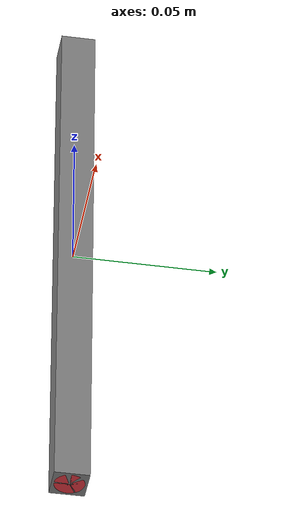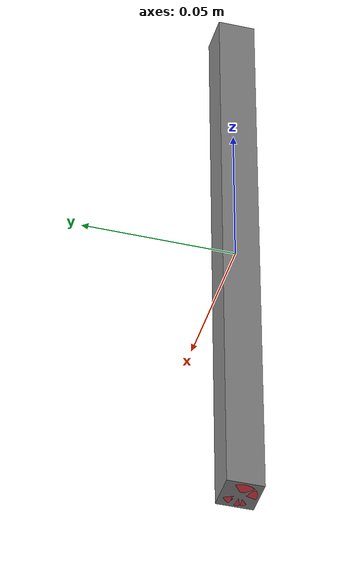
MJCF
<mujoco model="vla82_vla82_051">
  <compiler angle="radian"/>
  <asset>
    <texture name="source_texture" type="2d" file="source_texture.png"/>
    <material name="source_material" texture="source_texture" rgba="1 1 1 1"/>
  </asset>
  <default>
    <default class="visual"><geom contype="0" conaffinity="0" group="1"/></default>
    <default class="collision"><geom contype="1" conaffinity="1" group="0" density="300" friction="0.82 0.008 0.0003" solref="0.02 1" solimp="0.9 0.95 0.001"/></default>
    <default class="region"><geom contype="0" conaffinity="0" group="1" rgba="0 1 0 0" mass="0"/></default>
  </default>
  <worldbody><body><body name="object">
    <geom name="pencil_body" class="visual" mass="0" type="cylinder" pos="0 0 -0.004" size="0.005 0.073" rgba="0.96 0.68 0.08 1"/>
    <geom name="pencil_flat_0" class="visual" mass="0" type="box" pos="0 -0.0045 -0.004" size="0.0038 0.0008 0.073" rgba="1.00 0.79 0.12 1"/>
    <geom name="pencil_flat_1" class="visual" mass="0" type="box" pos="0.0039 0.0023 -0.004" size="0.0008 0.0034 0.073" rgba="0.82 0.48 0.03 1"/>
    <geom name="pencil_wood" class="visual" mass="0" type="capsule" pos="0 0 0.078" size="0.0045 0.010" rgba="0.82 0.62 0.37 1"/>
    <geom name="pencil_graphite" class="visual" mass="0" type="cylinder" pos="0 0 0.092" size="0.0015 0.003" rgba="0.08 0.08 0.09 1"/>
    <geom name="pencil_ferrule" class="visual" mass="0" type="cylinder" pos="0 0 -0.083" size="0.0055 0.008" rgba="0.72 0.75 0.78 1"/>
    <geom name="pencil_eraser" class="visual" mass="0" type="cylinder" pos="0 0 -0.089" size="0.0052 0.006" rgba="0.87 0.22 0.25 1"/>
    <geom name="legacy_visual_mass_carrier" class="visual" type="box" size="0.006000 0.006000 0.095000" mass="0.027360000" rgba="0 0 0 0"/>
    <geom name="collision" class="collision" type="box" size="0.006000 0.006000 0.095000"/>
    <geom name="reg_bbox" class="region" type="box" pos="0 0 0" size="0.006000 0.006000 0.095000"/>
  </body></body></worldbody>
  <actuator/>
</mujoco>
